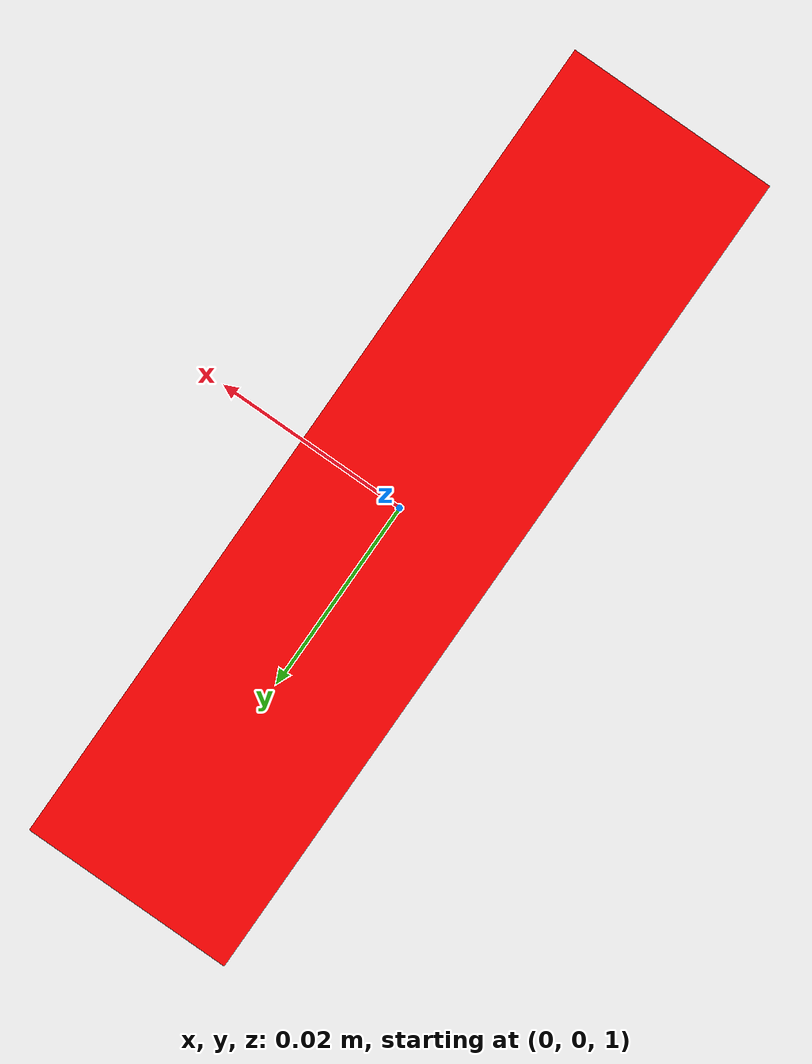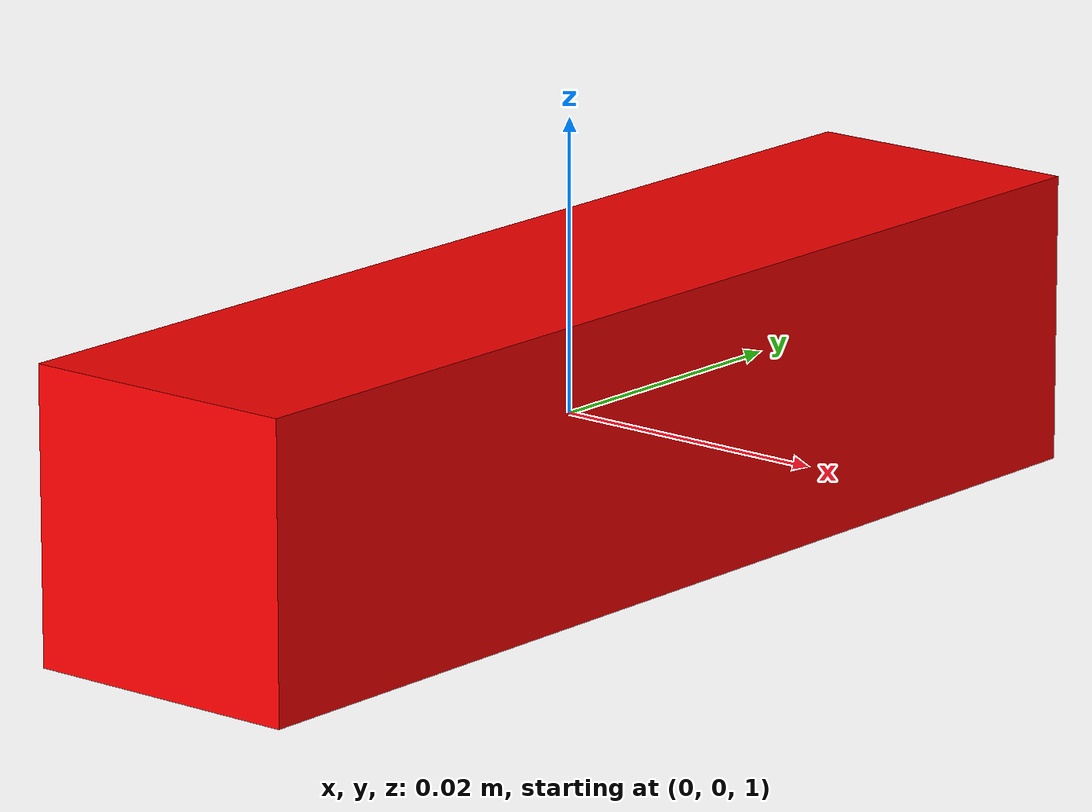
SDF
<?xml version="1.0"?>
<sdf version="1.7">
  <model name="test_box">
    <static>false</static>
    <link name="link">
      <pose>0 0 1 0 0 0</pose>
      <visual name="visual">
        <geometry>
          <box>
            <size>0.02 0.08 0.02</size>
          </box>
        </geometry>
        <material>
          <ambient>1 0 0 1</ambient>
          <diffuse>1 0 0 1</diffuse>
          <specular>0.1 0.1 0.1 1</specular>
        </material>
      </visual>
      <collision name="collision">
        <geometry>
          <box>
            <size>0.02 0.08 0.02</size>
          </box>
        </geometry>
      </collision>
      <inertial>
        <mass>0.5</mass>
        <inertia>
          <ixx>0.0001</ixx>
          <iyy>0.0001</iyy>
          <izz>0.0001</izz>
          <ixy>0.0</ixy>
          <ixz>0.0</ixz>
          <iyz>0.0</iyz>
        </inertia>
      </inertial>
    </link>
  </model>
</sdf>
